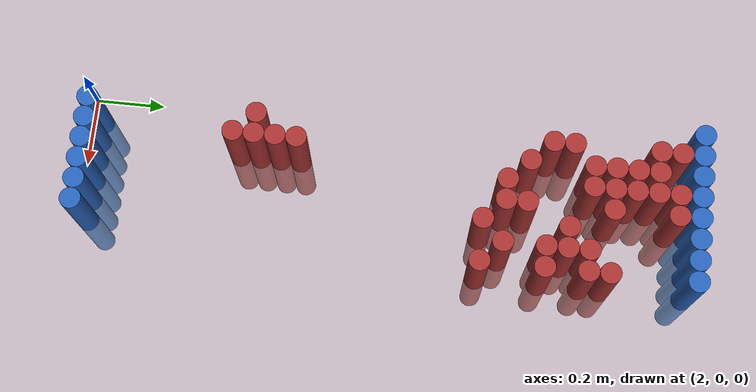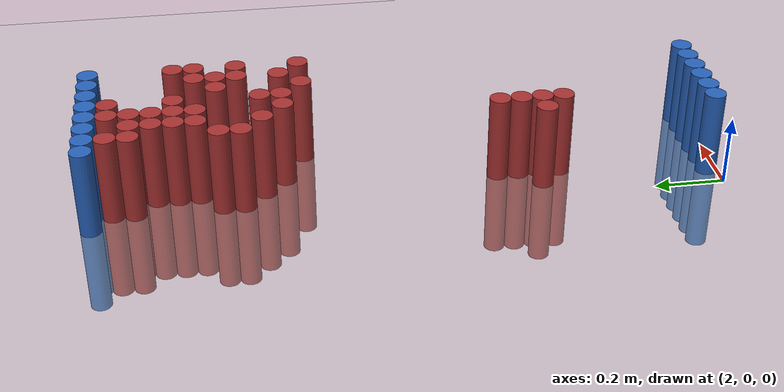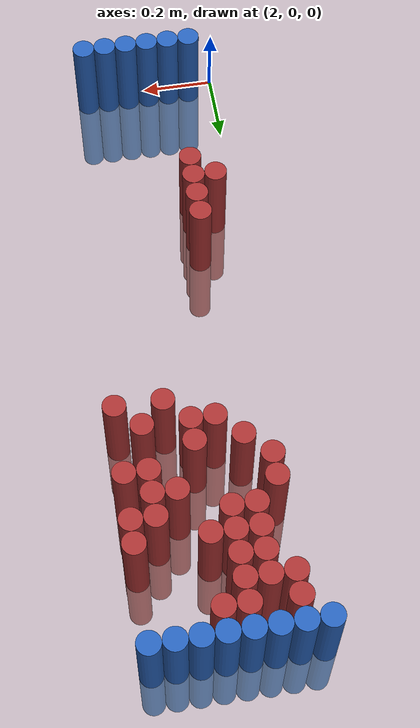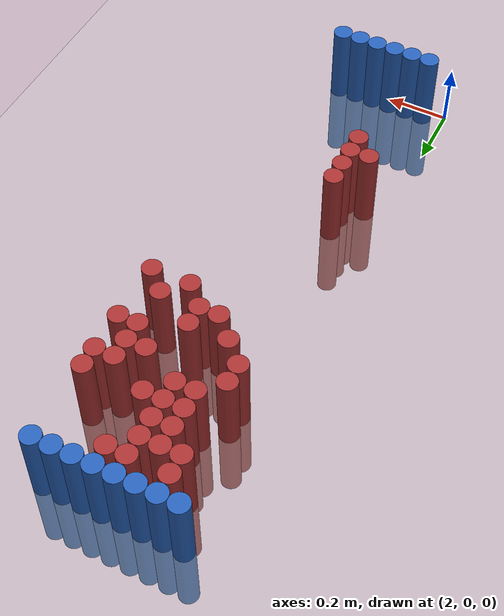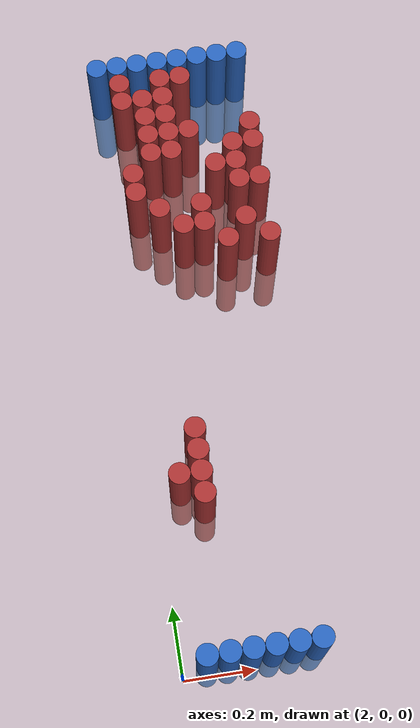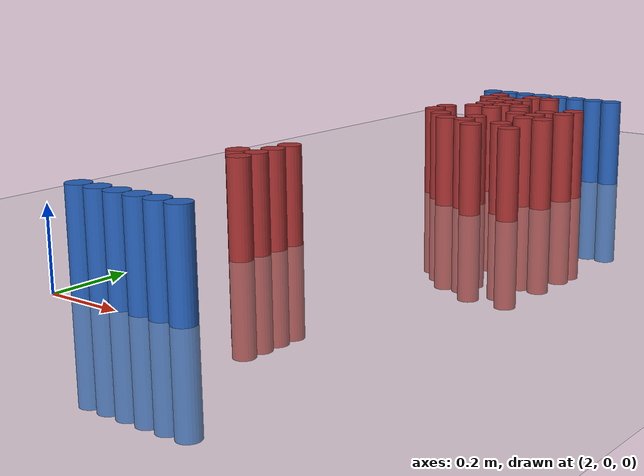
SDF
<sdf version="1.6">
 <world name="default">
  <model name="ground_plane">
   <static>1</static>
   <link name="link">
    <collision name="collision">
     <geometry><plane><normal>0 0 1</normal><size>100 100</size></plane></geometry>
     <surface><friction><ode><mu>100</mu><mu2>50</mu2></ode></friction></surface>
    </collision>
    <visual name="visual">
     <cast_shadows>0</cast_shadows>
     <geometry><plane><normal>0 0 1</normal><size>100 100</size></plane></geometry>
     <material>
      <script><uri>file://media/materials/scripts/gazebo.material</uri><name>Gazebo/Grey</name></script>
     </material>
    </visual>
   </link>
  </model>
  <model name="unit_cylinder_94">
   <static>1</static>
   <pose>2.010000 1.770000 0.000000 0.000000 0.000000 0.000000</pose>
   <link name="link">
    <inertial>
     <mass>1</mass>
     <inertia><ixx>0.145833</ixx><ixy>0</ixy><ixz>0</ixz><iyy>0.145833</iyy><iyz>0</iyz><izz>0.125</izz></inertia>
    </inertial>
    <collision name="collision">
     <geometry><cylinder><radius>0.030000</radius><length>0.5</length></cylinder></geometry>
    </collision>
    <visual name="visual">
     <geometry><cylinder><radius>0.030000</radius><length>0.5</length></cylinder></geometry>
     <material>
      <ambient>0.152000 0.379000 0.720000 1</ambient>
      <diffuse>0.152000 0.379000 0.720000 1</diffuse>
     </material>
     <material>
      <script><name>Gazebo/Grey</name><uri>file://media/materials/scripts/gazebo.material</uri></script>
     </material>
    </visual>
   </link>
  </model>
  <model name="unit_cylinder_95">
   <static>1</static>
   <pose>2.070000 1.770000 0.000000 0.000000 0.000000 0.000000</pose>
   <link name="link">
    <inertial>
     <mass>1</mass>
     <inertia><ixx>0.145833</ixx><ixy>0</ixy><ixz>0</ixz><iyy>0.145833</iyy><iyz>0</iyz><izz>0.125</izz></inertia>
    </inertial>
    <collision name="collision">
     <geometry><cylinder><radius>0.030000</radius><length>0.5</length></cylinder></geometry>
    </collision>
    <visual name="visual">
     <geometry><cylinder><radius>0.030000</radius><length>0.5</length></cylinder></geometry>
     <material>
      <ambient>0.152000 0.379000 0.720000 1</ambient>
      <diffuse>0.152000 0.379000 0.720000 1</diffuse>
     </material>
     <material>
      <script><name>Gazebo/Grey</name><uri>file://media/materials/scripts/gazebo.material</uri></script>
     </material>
    </visual>
   </link>
  </model>
  <model name="unit_cylinder_96">
   <static>1</static>
   <pose>2.130000 1.770000 0.000000 0.000000 0.000000 0.000000</pose>
   <link name="link">
    <inertial>
     <mass>1</mass>
     <inertia><ixx>0.145833</ixx><ixy>0</ixy><ixz>0</ixz><iyy>0.145833</iyy><iyz>0</iyz><izz>0.125</izz></inertia>
    </inertial>
    <collision name="collision">
     <geometry><cylinder><radius>0.030000</radius><length>0.5</length></cylinder></geometry>
    </collision>
    <visual name="visual">
     <geometry><cylinder><radius>0.030000</radius><length>0.5</length></cylinder></geometry>
     <material>
      <ambient>0.152000 0.379000 0.720000 1</ambient>
      <diffuse>0.152000 0.379000 0.720000 1</diffuse>
     </material>
     <material>
      <script><name>Gazebo/Grey</name><uri>file://media/materials/scripts/gazebo.material</uri></script>
     </material>
    </visual>
   </link>
  </model>
  <model name="unit_cylinder_97">
   <static>1</static>
   <pose>2.190000 1.770000 0.000000 0.000000 0.000000 0.000000</pose>
   <link name="link">
    <inertial>
     <mass>1</mass>
     <inertia><ixx>0.145833</ixx><ixy>0</ixy><ixz>0</ixz><iyy>0.145833</iyy><iyz>0</iyz><izz>0.125</izz></inertia>
    </inertial>
    <collision name="collision">
     <geometry><cylinder><radius>0.030000</radius><length>0.5</length></cylinder></geometry>
    </collision>
    <visual name="visual">
     <geometry><cylinder><radius>0.030000</radius><length>0.5</length></cylinder></geometry>
     <material>
      <ambient>0.152000 0.379000 0.720000 1</ambient>
      <diffuse>0.152000 0.379000 0.720000 1</diffuse>
     </material>
     <material>
      <script><name>Gazebo/Grey</name><uri>file://media/materials/scripts/gazebo.material</uri></script>
     </material>
    </visual>
   </link>
  </model>
  <model name="unit_cylinder_98">
   <static>1</static>
   <pose>2.250000 1.770000 0.000000 0.000000 0.000000 0.000000</pose>
   <link name="link">
    <inertial>
     <mass>1</mass>
     <inertia><ixx>0.145833</ixx><ixy>0</ixy><ixz>0</ixz><iyy>0.145833</iyy><iyz>0</iyz><izz>0.125</izz></inertia>
    </inertial>
    <collision name="collision">
     <geometry><cylinder><radius>0.030000</radius><length>0.5</length></cylinder></geometry>
    </collision>
    <visual name="visual">
     <geometry><cylinder><radius>0.030000</radius><length>0.5</length></cylinder></geometry>
     <material>
      <ambient>0.152000 0.379000 0.720000 1</ambient>
      <diffuse>0.152000 0.379000 0.720000 1</diffuse>
     </material>
     <material>
      <script><name>Gazebo/Grey</name><uri>file://media/materials/scripts/gazebo.material</uri></script>
     </material>
    </visual>
   </link>
  </model>
  <model name="unit_cylinder_99">
   <static>1</static>
   <pose>2.310000 1.770000 0.000000 0.000000 0.000000 0.000000</pose>
   <link name="link">
    <inertial>
     <mass>1</mass>
     <inertia><ixx>0.145833</ixx><ixy>0</ixy><ixz>0</ixz><iyy>0.145833</iyy><iyz>0</iyz><izz>0.125</izz></inertia>
    </inertial>
    <collision name="collision">
     <geometry><cylinder><radius>0.030000</radius><length>0.5</length></cylinder></geometry>
    </collision>
    <visual name="visual">
     <geometry><cylinder><radius>0.030000</radius><length>0.5</length></cylinder></geometry>
     <material>
      <ambient>0.152000 0.379000 0.720000 1</ambient>
      <diffuse>0.152000 0.379000 0.720000 1</diffuse>
     </material>
     <material>
      <script><name>Gazebo/Grey</name><uri>file://media/materials/scripts/gazebo.material</uri></script>
     </material>
    </visual>
   </link>
  </model>
  <model name="unit_cylinder_100">
   <static>1</static>
   <pose>2.370000 1.770000 0.000000 0.000000 0.000000 0.000000</pose>
   <link name="link">
    <inertial>
     <mass>1</mass>
     <inertia><ixx>0.145833</ixx><ixy>0</ixy><ixz>0</ixz><iyy>0.145833</iyy><iyz>0</iyz><izz>0.125</izz></inertia>
    </inertial>
    <collision name="collision">
     <geometry><cylinder><radius>0.030000</radius><length>0.5</length></cylinder></geometry>
    </collision>
    <visual name="visual">
     <geometry><cylinder><radius>0.030000</radius><length>0.5</length></cylinder></geometry>
     <material>
      <ambient>0.152000 0.379000 0.720000 1</ambient>
      <diffuse>0.152000 0.379000 0.720000 1</diffuse>
     </material>
     <material>
      <script><name>Gazebo/Grey</name><uri>file://media/materials/scripts/gazebo.material</uri></script>
     </material>
    </visual>
   </link>
  </model>
  <model name="unit_cylinder_101">
   <static>1</static>
   <pose>2.430000 1.770000 0.000000 0.000000 0.000000 0.000000</pose>
   <link name="link">
    <inertial>
     <mass>1</mass>
     <inertia><ixx>0.145833</ixx><ixy>0</ixy><ixz>0</ixz><iyy>0.145833</iyy><iyz>0</iyz><izz>0.125</izz></inertia>
    </inertial>
    <collision name="collision">
     <geometry><cylinder><radius>0.030000</radius><length>0.5</length></cylinder></geometry>
    </collision>
    <visual name="visual">
     <geometry><cylinder><radius>0.030000</radius><length>0.5</length></cylinder></geometry>
     <material>
      <ambient>0.152000 0.379000 0.720000 1</ambient>
      <diffuse>0.152000 0.379000 0.720000 1</diffuse>
     </material>
     <material>
      <script><name>Gazebo/Grey</name><uri>file://media/materials/scripts/gazebo.material</uri></script>
     </material>
    </visual>
   </link>
  </model>
  <model name="unit_cylinder_125">
   <static>1</static>
   <pose>2.070000 1.710000 0.000000 0.000000 0.000000 0.000000</pose>
   <link name="link">
    <inertial>
     <mass>1</mass>
     <inertia><ixx>0.145833</ixx><ixy>0</ixy><ixz>0</ixz><iyy>0.145833</iyy><iyz>0</iyz><izz>0.125</izz></inertia>
    </inertial>
    <collision name="collision">
     <geometry><cylinder><radius>0.030000</radius><length>0.5</length></cylinder></geometry>
    </collision>
    <visual name="visual">
     <geometry><cylinder><radius>0.030000</radius><length>0.5</length></cylinder></geometry>
     <material>
      <ambient>0.648000 0.192000 0.192000 1</ambient>
      <diffuse>0.648000 0.192000 0.192000 1</diffuse>
     </material>
     <material>
      <script><name>Gazebo/Grey</name><uri>file://media/materials/scripts/gazebo.material</uri></script>
     </material>
    </visual>
   </link>
  </model>
  <model name="unit_cylinder_126">
   <static>1</static>
   <pose>2.190000 1.710000 0.000000 0.000000 0.000000 0.000000</pose>
   <link name="link">
    <inertial>
     <mass>1</mass>
     <inertia><ixx>0.145833</ixx><ixy>0</ixy><ixz>0</ixz><iyy>0.145833</iyy><iyz>0</iyz><izz>0.125</izz></inertia>
    </inertial>
    <collision name="collision">
     <geometry><cylinder><radius>0.030000</radius><length>0.5</length></cylinder></geometry>
    </collision>
    <visual name="visual">
     <geometry><cylinder><radius>0.030000</radius><length>0.5</length></cylinder></geometry>
     <material>
      <ambient>0.648000 0.192000 0.192000 1</ambient>
      <diffuse>0.648000 0.192000 0.192000 1</diffuse>
     </material>
     <material>
      <script><name>Gazebo/Grey</name><uri>file://media/materials/scripts/gazebo.material</uri></script>
     </material>
    </visual>
   </link>
  </model>
  <model name="unit_cylinder_127">
   <static>1</static>
   <pose>2.250000 1.710000 0.000000 0.000000 0.000000 0.000000</pose>
   <link name="link">
    <inertial>
     <mass>1</mass>
     <inertia><ixx>0.145833</ixx><ixy>0</ixy><ixz>0</ixz><iyy>0.145833</iyy><iyz>0</iyz><izz>0.125</izz></inertia>
    </inertial>
    <collision name="collision">
     <geometry><cylinder><radius>0.030000</radius><length>0.5</length></cylinder></geometry>
    </collision>
    <visual name="visual">
     <geometry><cylinder><radius>0.030000</radius><length>0.5</length></cylinder></geometry>
     <material>
      <ambient>0.648000 0.192000 0.192000 1</ambient>
      <diffuse>0.648000 0.192000 0.192000 1</diffuse>
     </material>
     <material>
      <script><name>Gazebo/Grey</name><uri>file://media/materials/scripts/gazebo.material</uri></script>
     </material>
    </visual>
   </link>
  </model>
  <model name="unit_cylinder_138">
   <static>1</static>
   <pose>2.070000 1.650000 0.000000 0.000000 0.000000 0.000000</pose>
   <link name="link">
    <inertial>
     <mass>1</mass>
     <inertia><ixx>0.145833</ixx><ixy>0</ixy><ixz>0</ixz><iyy>0.145833</iyy><iyz>0</iyz><izz>0.125</izz></inertia>
    </inertial>
    <collision name="collision">
     <geometry><cylinder><radius>0.030000</radius><length>0.5</length></cylinder></geometry>
    </collision>
    <visual name="visual">
     <geometry><cylinder><radius>0.030000</radius><length>0.5</length></cylinder></geometry>
     <material>
      <ambient>0.648000 0.192000 0.192000 1</ambient>
      <diffuse>0.648000 0.192000 0.192000 1</diffuse>
     </material>
     <material>
      <script><name>Gazebo/Grey</name><uri>file://media/materials/scripts/gazebo.material</uri></script>
     </material>
    </visual>
   </link>
  </model>
  <model name="unit_cylinder_139">
   <static>1</static>
   <pose>2.130000 1.650000 0.000000 0.000000 0.000000 0.000000</pose>
   <link name="link">
    <inertial>
     <mass>1</mass>
     <inertia><ixx>0.145833</ixx><ixy>0</ixy><ixz>0</ixz><iyy>0.145833</iyy><iyz>0</iyz><izz>0.125</izz></inertia>
    </inertial>
    <collision name="collision">
     <geometry><cylinder><radius>0.030000</radius><length>0.5</length></cylinder></geometry>
    </collision>
    <visual name="visual">
     <geometry><cylinder><radius>0.030000</radius><length>0.5</length></cylinder></geometry>
     <material>
      <ambient>0.648000 0.192000 0.192000 1</ambient>
      <diffuse>0.648000 0.192000 0.192000 1</diffuse>
     </material>
     <material>
      <script><name>Gazebo/Grey</name><uri>file://media/materials/scripts/gazebo.material</uri></script>
     </material>
    </visual>
   </link>
  </model>
  <model name="unit_cylinder_140">
   <static>1</static>
   <pose>2.190000 1.650000 0.000000 0.000000 0.000000 0.000000</pose>
   <link name="link">
    <inertial>
     <mass>1</mass>
     <inertia><ixx>0.145833</ixx><ixy>0</ixy><ixz>0</ixz><iyy>0.145833</iyy><iyz>0</iyz><izz>0.125</izz></inertia>
    </inertial>
    <collision name="collision">
     <geometry><cylinder><radius>0.030000</radius><length>0.5</length></cylinder></geometry>
    </collision>
    <visual name="visual">
     <geometry><cylinder><radius>0.030000</radius><length>0.5</length></cylinder></geometry>
     <material>
      <ambient>0.648000 0.192000 0.192000 1</ambient>
      <diffuse>0.648000 0.192000 0.192000 1</diffuse>
     </material>
     <material>
      <script><name>Gazebo/Grey</name><uri>file://media/materials/scripts/gazebo.material</uri></script>
     </material>
    </visual>
   </link>
  </model>
  <model name="unit_cylinder_149">
   <static>1</static>
   <pose>2.130000 1.590000 0.000000 0.000000 0.000000 0.000000</pose>
   <link name="link">
    <inertial>
     <mass>1</mass>
     <inertia><ixx>0.145833</ixx><ixy>0</ixy><ixz>0</ixz><iyy>0.145833</iyy><iyz>0</iyz><izz>0.125</izz></inertia>
    </inertial>
    <collision name="collision">
     <geometry><cylinder><radius>0.030000</radius><length>0.5</length></cylinder></geometry>
    </collision>
    <visual name="visual">
     <geometry><cylinder><radius>0.030000</radius><length>0.5</length></cylinder></geometry>
     <material>
      <ambient>0.648000 0.192000 0.192000 1</ambient>
      <diffuse>0.648000 0.192000 0.192000 1</diffuse>
     </material>
     <material>
      <script><name>Gazebo/Grey</name><uri>file://media/materials/scripts/gazebo.material</uri></script>
     </material>
    </visual>
   </link>
  </model>
  <model name="unit_cylinder_150">
   <static>1</static>
   <pose>2.190000 1.590000 0.000000 0.000000 0.000000 0.000000</pose>
   <link name="link">
    <inertial>
     <mass>1</mass>
     <inertia><ixx>0.145833</ixx><ixy>0</ixy><ixz>0</ixz><iyy>0.145833</iyy><iyz>0</iyz><izz>0.125</izz></inertia>
    </inertial>
    <collision name="collision">
     <geometry><cylinder><radius>0.030000</radius><length>0.5</length></cylinder></geometry>
    </collision>
    <visual name="visual">
     <geometry><cylinder><radius>0.030000</radius><length>0.5</length></cylinder></geometry>
     <material>
      <ambient>0.648000 0.192000 0.192000 1</ambient>
      <diffuse>0.648000 0.192000 0.192000 1</diffuse>
     </material>
     <material>
      <script><name>Gazebo/Grey</name><uri>file://media/materials/scripts/gazebo.material</uri></script>
     </material>
    </visual>
   </link>
  </model>
  <model name="unit_cylinder_156">
   <static>1</static>
   <pose>2.130000 1.530000 0.000000 0.000000 0.000000 0.000000</pose>
   <link name="link">
    <inertial>
     <mass>1</mass>
     <inertia><ixx>0.145833</ixx><ixy>0</ixy><ixz>0</ixz><iyy>0.145833</iyy><iyz>0</iyz><izz>0.125</izz></inertia>
    </inertial>
    <collision name="collision">
     <geometry><cylinder><radius>0.030000</radius><length>0.5</length></cylinder></geometry>
    </collision>
    <visual name="visual">
     <geometry><cylinder><radius>0.030000</radius><length>0.5</length></cylinder></geometry>
     <material>
      <ambient>0.648000 0.192000 0.192000 1</ambient>
      <diffuse>0.648000 0.192000 0.192000 1</diffuse>
     </material>
     <material>
      <script><name>Gazebo/Grey</name><uri>file://media/materials/scripts/gazebo.material</uri></script>
     </material>
    </visual>
   </link>
  </model>
  <model name="unit_cylinder_157">
   <static>1</static>
   <pose>2.190000 1.530000 0.000000 0.000000 0.000000 0.000000</pose>
   <link name="link">
    <inertial>
     <mass>1</mass>
     <inertia><ixx>0.145833</ixx><ixy>0</ixy><ixz>0</ixz><iyy>0.145833</iyy><iyz>0</iyz><izz>0.125</izz></inertia>
    </inertial>
    <collision name="collision">
     <geometry><cylinder><radius>0.030000</radius><length>0.5</length></cylinder></geometry>
    </collision>
    <visual name="visual">
     <geometry><cylinder><radius>0.030000</radius><length>0.5</length></cylinder></geometry>
     <material>
      <ambient>0.648000 0.192000 0.192000 1</ambient>
      <diffuse>0.648000 0.192000 0.192000 1</diffuse>
     </material>
     <material>
      <script><name>Gazebo/Grey</name><uri>file://media/materials/scripts/gazebo.material</uri></script>
     </material>
    </visual>
   </link>
  </model>
  <model name="unit_cylinder_158">
   <static>1</static>
   <pose>2.250000 1.530000 0.000000 0.000000 0.000000 0.000000</pose>
   <link name="link">
    <inertial>
     <mass>1</mass>
     <inertia><ixx>0.145833</ixx><ixy>0</ixy><ixz>0</ixz><iyy>0.145833</iyy><iyz>0</iyz><izz>0.125</izz></inertia>
    </inertial>
    <collision name="collision">
     <geometry><cylinder><radius>0.030000</radius><length>0.5</length></cylinder></geometry>
    </collision>
    <visual name="visual">
     <geometry><cylinder><radius>0.030000</radius><length>0.5</length></cylinder></geometry>
     <material>
      <ambient>0.648000 0.192000 0.192000 1</ambient>
      <diffuse>0.648000 0.192000 0.192000 1</diffuse>
     </material>
     <material>
      <script><name>Gazebo/Grey</name><uri>file://media/materials/scripts/gazebo.material</uri></script>
     </material>
    </visual>
   </link>
  </model>
  <model name="unit_cylinder_159">
   <static>1</static>
   <pose>2.430000 1.530000 0.000000 0.000000 0.000000 0.000000</pose>
   <link name="link">
    <inertial>
     <mass>1</mass>
     <inertia><ixx>0.145833</ixx><ixy>0</ixy><ixz>0</ixz><iyy>0.145833</iyy><iyz>0</iyz><izz>0.125</izz></inertia>
    </inertial>
    <collision name="collision">
     <geometry><cylinder><radius>0.030000</radius><length>0.5</length></cylinder></geometry>
    </collision>
    <visual name="visual">
     <geometry><cylinder><radius>0.030000</radius><length>0.5</length></cylinder></geometry>
     <material>
      <ambient>0.648000 0.192000 0.192000 1</ambient>
      <diffuse>0.648000 0.192000 0.192000 1</diffuse>
     </material>
     <material>
      <script><name>Gazebo/Grey</name><uri>file://media/materials/scripts/gazebo.material</uri></script>
     </material>
    </visual>
   </link>
  </model>
  <model name="unit_cylinder_171">
   <static>1</static>
   <pose>2.130000 1.470000 0.000000 0.000000 0.000000 0.000000</pose>
   <link name="link">
    <inertial>
     <mass>1</mass>
     <inertia><ixx>0.145833</ixx><ixy>0</ixy><ixz>0</ixz><iyy>0.145833</iyy><iyz>0</iyz><izz>0.125</izz></inertia>
    </inertial>
    <collision name="collision">
     <geometry><cylinder><radius>0.030000</radius><length>0.5</length></cylinder></geometry>
    </collision>
    <visual name="visual">
     <geometry><cylinder><radius>0.030000</radius><length>0.5</length></cylinder></geometry>
     <material>
      <ambient>0.648000 0.192000 0.192000 1</ambient>
      <diffuse>0.648000 0.192000 0.192000 1</diffuse>
     </material>
     <material>
      <script><name>Gazebo/Grey</name><uri>file://media/materials/scripts/gazebo.material</uri></script>
     </material>
    </visual>
   </link>
  </model>
  <model name="unit_cylinder_172">
   <static>1</static>
   <pose>2.190000 1.470000 0.000000 0.000000 0.000000 0.000000</pose>
   <link name="link">
    <inertial>
     <mass>1</mass>
     <inertia><ixx>0.145833</ixx><ixy>0</ixy><ixz>0</ixz><iyy>0.145833</iyy><iyz>0</iyz><izz>0.125</izz></inertia>
    </inertial>
    <collision name="collision">
     <geometry><cylinder><radius>0.030000</radius><length>0.5</length></cylinder></geometry>
    </collision>
    <visual name="visual">
     <geometry><cylinder><radius>0.030000</radius><length>0.5</length></cylinder></geometry>
     <material>
      <ambient>0.648000 0.192000 0.192000 1</ambient>
      <diffuse>0.648000 0.192000 0.192000 1</diffuse>
     </material>
     <material>
      <script><name>Gazebo/Grey</name><uri>file://media/materials/scripts/gazebo.material</uri></script>
     </material>
    </visual>
   </link>
  </model>
  <model name="unit_cylinder_173">
   <static>1</static>
   <pose>2.370000 1.470000 0.000000 0.000000 0.000000 0.000000</pose>
   <link name="link">
    <inertial>
     <mass>1</mass>
     <inertia><ixx>0.145833</ixx><ixy>0</ixy><ixz>0</ixz><iyy>0.145833</iyy><iyz>0</iyz><izz>0.125</izz></inertia>
    </inertial>
    <collision name="collision">
     <geometry><cylinder><radius>0.030000</radius><length>0.5</length></cylinder></geometry>
    </collision>
    <visual name="visual">
     <geometry><cylinder><radius>0.030000</radius><length>0.5</length></cylinder></geometry>
     <material>
      <ambient>0.648000 0.192000 0.192000 1</ambient>
      <diffuse>0.648000 0.192000 0.192000 1</diffuse>
     </material>
     <material>
      <script><name>Gazebo/Grey</name><uri>file://media/materials/scripts/gazebo.material</uri></script>
     </material>
    </visual>
   </link>
  </model>
  <model name="unit_cylinder_174">
   <static>1</static>
   <pose>2.430000 1.470000 0.000000 0.000000 0.000000 0.000000</pose>
   <link name="link">
    <inertial>
     <mass>1</mass>
     <inertia><ixx>0.145833</ixx><ixy>0</ixy><ixz>0</ixz><iyy>0.145833</iyy><iyz>0</iyz><izz>0.125</izz></inertia>
    </inertial>
    <collision name="collision">
     <geometry><cylinder><radius>0.030000</radius><length>0.5</length></cylinder></geometry>
    </collision>
    <visual name="visual">
     <geometry><cylinder><radius>0.030000</radius><length>0.5</length></cylinder></geometry>
     <material>
      <ambient>0.648000 0.192000 0.192000 1</ambient>
      <diffuse>0.648000 0.192000 0.192000 1</diffuse>
     </material>
     <material>
      <script><name>Gazebo/Grey</name><uri>file://media/materials/scripts/gazebo.material</uri></script>
     </material>
    </visual>
   </link>
  </model>
  <model name="unit_cylinder_186">
   <static>1</static>
   <pose>2.070000 1.410000 0.000000 0.000000 0.000000 0.000000</pose>
   <link name="link">
    <inertial>
     <mass>1</mass>
     <inertia><ixx>0.145833</ixx><ixy>0</ixy><ixz>0</ixz><iyy>0.145833</iyy><iyz>0</iyz><izz>0.125</izz></inertia>
    </inertial>
    <collision name="collision">
     <geometry><cylinder><radius>0.030000</radius><length>0.5</length></cylinder></geometry>
    </collision>
    <visual name="visual">
     <geometry><cylinder><radius>0.030000</radius><length>0.5</length></cylinder></geometry>
     <material>
      <ambient>0.648000 0.192000 0.192000 1</ambient>
      <diffuse>0.648000 0.192000 0.192000 1</diffuse>
     </material>
     <material>
      <script><name>Gazebo/Grey</name><uri>file://media/materials/scripts/gazebo.material</uri></script>
     </material>
    </visual>
   </link>
  </model>
  <model name="unit_cylinder_187">
   <static>1</static>
   <pose>2.310000 1.410000 0.000000 0.000000 0.000000 0.000000</pose>
   <link name="link">
    <inertial>
     <mass>1</mass>
     <inertia><ixx>0.145833</ixx><ixy>0</ixy><ixz>0</ixz><iyy>0.145833</iyy><iyz>0</iyz><izz>0.125</izz></inertia>
    </inertial>
    <collision name="collision">
     <geometry><cylinder><radius>0.030000</radius><length>0.5</length></cylinder></geometry>
    </collision>
    <visual name="visual">
     <geometry><cylinder><radius>0.030000</radius><length>0.5</length></cylinder></geometry>
     <material>
      <ambient>0.648000 0.192000 0.192000 1</ambient>
      <diffuse>0.648000 0.192000 0.192000 1</diffuse>
     </material>
     <material>
      <script><name>Gazebo/Grey</name><uri>file://media/materials/scripts/gazebo.material</uri></script>
     </material>
    </visual>
   </link>
  </model>
  <model name="unit_cylinder_188">
   <static>1</static>
   <pose>2.370000 1.410000 0.000000 0.000000 0.000000 0.000000</pose>
   <link name="link">
    <inertial>
     <mass>1</mass>
     <inertia><ixx>0.145833</ixx><ixy>0</ixy><ixz>0</ixz><iyy>0.145833</iyy><iyz>0</iyz><izz>0.125</izz></inertia>
    </inertial>
    <collision name="collision">
     <geometry><cylinder><radius>0.030000</radius><length>0.5</length></cylinder></geometry>
    </collision>
    <visual name="visual">
     <geometry><cylinder><radius>0.030000</radius><length>0.5</length></cylinder></geometry>
     <material>
      <ambient>0.648000 0.192000 0.192000 1</ambient>
      <diffuse>0.648000 0.192000 0.192000 1</diffuse>
     </material>
     <material>
      <script><name>Gazebo/Grey</name><uri>file://media/materials/scripts/gazebo.material</uri></script>
     </material>
    </visual>
   </link>
  </model>
  <model name="unit_cylinder_194">
   <static>1</static>
   <pose>2.070000 1.350000 0.000000 0.000000 0.000000 0.000000</pose>
   <link name="link">
    <inertial>
     <mass>1</mass>
     <inertia><ixx>0.145833</ixx><ixy>0</ixy><ixz>0</ixz><iyy>0.145833</iyy><iyz>0</iyz><izz>0.125</izz></inertia>
    </inertial>
    <collision name="collision">
     <geometry><cylinder><radius>0.030000</radius><length>0.5</length></cylinder></geometry>
    </collision>
    <visual name="visual">
     <geometry><cylinder><radius>0.030000</radius><length>0.5</length></cylinder></geometry>
     <material>
      <ambient>0.648000 0.192000 0.192000 1</ambient>
      <diffuse>0.648000 0.192000 0.192000 1</diffuse>
     </material>
     <material>
      <script><name>Gazebo/Grey</name><uri>file://media/materials/scripts/gazebo.material</uri></script>
     </material>
    </visual>
   </link>
  </model>
  <model name="unit_cylinder_195">
   <static>1</static>
   <pose>2.370000 1.350000 0.000000 0.000000 0.000000 0.000000</pose>
   <link name="link">
    <inertial>
     <mass>1</mass>
     <inertia><ixx>0.145833</ixx><ixy>0</ixy><ixz>0</ixz><iyy>0.145833</iyy><iyz>0</iyz><izz>0.125</izz></inertia>
    </inertial>
    <collision name="collision">
     <geometry><cylinder><radius>0.030000</radius><length>0.5</length></cylinder></geometry>
    </collision>
    <visual name="visual">
     <geometry><cylinder><radius>0.030000</radius><length>0.5</length></cylinder></geometry>
     <material>
      <ambient>0.648000 0.192000 0.192000 1</ambient>
      <diffuse>0.648000 0.192000 0.192000 1</diffuse>
     </material>
     <material>
      <script><name>Gazebo/Grey</name><uri>file://media/materials/scripts/gazebo.material</uri></script>
     </material>
    </visual>
   </link>
  </model>
  <model name="unit_cylinder_196">
   <static>1</static>
   <pose>2.430000 1.350000 0.000000 0.000000 0.000000 0.000000</pose>
   <link name="link">
    <inertial>
     <mass>1</mass>
     <inertia><ixx>0.145833</ixx><ixy>0</ixy><ixz>0</ixz><iyy>0.145833</iyy><iyz>0</iyz><izz>0.125</izz></inertia>
    </inertial>
    <collision name="collision">
     <geometry><cylinder><radius>0.030000</radius><length>0.5</length></cylinder></geometry>
    </collision>
    <visual name="visual">
     <geometry><cylinder><radius>0.030000</radius><length>0.5</length></cylinder></geometry>
     <material>
      <ambient>0.648000 0.192000 0.192000 1</ambient>
      <diffuse>0.648000 0.192000 0.192000 1</diffuse>
     </material>
     <material>
      <script><name>Gazebo/Grey</name><uri>file://media/materials/scripts/gazebo.material</uri></script>
     </material>
    </visual>
   </link>
  </model>
  <model name="unit_cylinder_200">
   <static>1</static>
   <pose>2.130000 1.290000 0.000000 0.000000 0.000000 0.000000</pose>
   <link name="link">
    <inertial>
     <mass>1</mass>
     <inertia><ixx>0.145833</ixx><ixy>0</ixy><ixz>0</ixz><iyy>0.145833</iyy><iyz>0</iyz><izz>0.125</izz></inertia>
    </inertial>
    <collision name="collision">
     <geometry><cylinder><radius>0.030000</radius><length>0.5</length></cylinder></geometry>
    </collision>
    <visual name="visual">
     <geometry><cylinder><radius>0.030000</radius><length>0.5</length></cylinder></geometry>
     <material>
      <ambient>0.648000 0.192000 0.192000 1</ambient>
      <diffuse>0.648000 0.192000 0.192000 1</diffuse>
     </material>
     <material>
      <script><name>Gazebo/Grey</name><uri>file://media/materials/scripts/gazebo.material</uri></script>
     </material>
    </visual>
   </link>
  </model>
  <model name="unit_cylinder_201">
   <static>1</static>
   <pose>2.250000 1.290000 0.000000 0.000000 0.000000 0.000000</pose>
   <link name="link">
    <inertial>
     <mass>1</mass>
     <inertia><ixx>0.145833</ixx><ixy>0</ixy><ixz>0</ixz><iyy>0.145833</iyy><iyz>0</iyz><izz>0.125</izz></inertia>
    </inertial>
    <collision name="collision">
     <geometry><cylinder><radius>0.030000</radius><length>0.5</length></cylinder></geometry>
    </collision>
    <visual name="visual">
     <geometry><cylinder><radius>0.030000</radius><length>0.5</length></cylinder></geometry>
     <material>
      <ambient>0.648000 0.192000 0.192000 1</ambient>
      <diffuse>0.648000 0.192000 0.192000 1</diffuse>
     </material>
     <material>
      <script><name>Gazebo/Grey</name><uri>file://media/materials/scripts/gazebo.material</uri></script>
     </material>
    </visual>
   </link>
  </model>
  <model name="unit_cylinder_205">
   <static>1</static>
   <pose>2.190000 1.230000 0.000000 0.000000 0.000000 0.000000</pose>
   <link name="link">
    <inertial>
     <mass>1</mass>
     <inertia><ixx>0.145833</ixx><ixy>0</ixy><ixz>0</ixz><iyy>0.145833</iyy><iyz>0</iyz><izz>0.125</izz></inertia>
    </inertial>
    <collision name="collision">
     <geometry><cylinder><radius>0.030000</radius><length>0.5</length></cylinder></geometry>
    </collision>
    <visual name="visual">
     <geometry><cylinder><radius>0.030000</radius><length>0.5</length></cylinder></geometry>
     <material>
      <ambient>0.648000 0.192000 0.192000 1</ambient>
      <diffuse>0.648000 0.192000 0.192000 1</diffuse>
     </material>
     <material>
      <script><name>Gazebo/Grey</name><uri>file://media/materials/scripts/gazebo.material</uri></script>
     </material>
    </visual>
   </link>
  </model>
  <model name="unit_cylinder_206">
   <static>1</static>
   <pose>2.250000 1.230000 0.000000 0.000000 0.000000 0.000000</pose>
   <link name="link">
    <inertial>
     <mass>1</mass>
     <inertia><ixx>0.145833</ixx><ixy>0</ixy><ixz>0</ixz><iyy>0.145833</iyy><iyz>0</iyz><izz>0.125</izz></inertia>
    </inertial>
    <collision name="collision">
     <geometry><cylinder><radius>0.030000</radius><length>0.5</length></cylinder></geometry>
    </collision>
    <visual name="visual">
     <geometry><cylinder><radius>0.030000</radius><length>0.5</length></cylinder></geometry>
     <material>
      <ambient>0.648000 0.192000 0.192000 1</ambient>
      <diffuse>0.648000 0.192000 0.192000 1</diffuse>
     </material>
     <material>
      <script><name>Gazebo/Grey</name><uri>file://media/materials/scripts/gazebo.material</uri></script>
     </material>
    </visual>
   </link>
  </model>
  <model name="unit_cylinder_207">
   <static>1</static>
   <pose>2.370000 1.230000 0.000000 0.000000 0.000000 0.000000</pose>
   <link name="link">
    <inertial>
     <mass>1</mass>
     <inertia><ixx>0.145833</ixx><ixy>0</ixy><ixz>0</ixz><iyy>0.145833</iyy><iyz>0</iyz><izz>0.125</izz></inertia>
    </inertial>
    <collision name="collision">
     <geometry><cylinder><radius>0.030000</radius><length>0.5</length></cylinder></geometry>
    </collision>
    <visual name="visual">
     <geometry><cylinder><radius>0.030000</radius><length>0.5</length></cylinder></geometry>
     <material>
      <ambient>0.648000 0.192000 0.192000 1</ambient>
      <diffuse>0.648000 0.192000 0.192000 1</diffuse>
     </material>
     <material>
      <script><name>Gazebo/Grey</name><uri>file://media/materials/scripts/gazebo.material</uri></script>
     </material>
    </visual>
   </link>
  </model>
  <model name="unit_cylinder_212">
   <static>1</static>
   <pose>2.310000 1.170000 0.000000 0.000000 0.000000 0.000000</pose>
   <link name="link">
    <inertial>
     <mass>1</mass>
     <inertia><ixx>0.145833</ixx><ixy>0</ixy><ixz>0</ixz><iyy>0.145833</iyy><iyz>0</iyz><izz>0.125</izz></inertia>
    </inertial>
    <collision name="collision">
     <geometry><cylinder><radius>0.030000</radius><length>0.5</length></cylinder></geometry>
    </collision>
    <visual name="visual">
     <geometry><cylinder><radius>0.030000</radius><length>0.5</length></cylinder></geometry>
     <material>
      <ambient>0.648000 0.192000 0.192000 1</ambient>
      <diffuse>0.648000 0.192000 0.192000 1</diffuse>
     </material>
     <material>
      <script><name>Gazebo/Grey</name><uri>file://media/materials/scripts/gazebo.material</uri></script>
     </material>
    </visual>
   </link>
  </model>
  <model name="unit_cylinder_213">
   <static>1</static>
   <pose>2.430000 1.170000 0.000000 0.000000 0.000000 0.000000</pose>
   <link name="link">
    <inertial>
     <mass>1</mass>
     <inertia><ixx>0.145833</ixx><ixy>0</ixy><ixz>0</ixz><iyy>0.145833</iyy><iyz>0</iyz><izz>0.125</izz></inertia>
    </inertial>
    <collision name="collision">
     <geometry><cylinder><radius>0.030000</radius><length>0.5</length></cylinder></geometry>
    </collision>
    <visual name="visual">
     <geometry><cylinder><radius>0.030000</radius><length>0.5</length></cylinder></geometry>
     <material>
      <ambient>0.648000 0.192000 0.192000 1</ambient>
      <diffuse>0.648000 0.192000 0.192000 1</diffuse>
     </material>
     <material>
      <script><name>Gazebo/Grey</name><uri>file://media/materials/scripts/gazebo.material</uri></script>
     </material>
    </visual>
   </link>
  </model>
  <model name="unit_cylinder_228">
   <static>1</static>
   <pose>2.130000 0.630000 0.000000 0.000000 0.000000 0.000000</pose>
   <link name="link">
    <inertial>
     <mass>1</mass>
     <inertia><ixx>0.145833</ixx><ixy>0</ixy><ixz>0</ixz><iyy>0.145833</iyy><iyz>0</iyz><izz>0.125</izz></inertia>
    </inertial>
    <collision name="collision">
     <geometry><cylinder><radius>0.030000</radius><length>0.5</length></cylinder></geometry>
    </collision>
    <visual name="visual">
     <geometry><cylinder><radius>0.030000</radius><length>0.5</length></cylinder></geometry>
     <material>
      <ambient>0.648000 0.192000 0.192000 1</ambient>
      <diffuse>0.648000 0.192000 0.192000 1</diffuse>
     </material>
     <material>
      <script><name>Gazebo/Grey</name><uri>file://media/materials/scripts/gazebo.material</uri></script>
     </material>
    </visual>
   </link>
  </model>
  <model name="unit_cylinder_229">
   <static>1</static>
   <pose>2.130000 0.570000 0.000000 0.000000 0.000000 0.000000</pose>
   <link name="link">
    <inertial>
     <mass>1</mass>
     <inertia><ixx>0.145833</ixx><ixy>0</ixy><ixz>0</ixz><iyy>0.145833</iyy><iyz>0</iyz><izz>0.125</izz></inertia>
    </inertial>
    <collision name="collision">
     <geometry><cylinder><radius>0.030000</radius><length>0.5</length></cylinder></geometry>
    </collision>
    <visual name="visual">
     <geometry><cylinder><radius>0.030000</radius><length>0.5</length></cylinder></geometry>
     <material>
      <ambient>0.648000 0.192000 0.192000 1</ambient>
      <diffuse>0.648000 0.192000 0.192000 1</diffuse>
     </material>
     <material>
      <script><name>Gazebo/Grey</name><uri>file://media/materials/scripts/gazebo.material</uri></script>
     </material>
    </visual>
   </link>
  </model>
  <model name="unit_cylinder_234">
   <static>1</static>
   <pose>2.070000 0.510000 0.000000 0.000000 0.000000 0.000000</pose>
   <link name="link">
    <inertial>
     <mass>1</mass>
     <inertia><ixx>0.145833</ixx><ixy>0</ixy><ixz>0</ixz><iyy>0.145833</iyy><iyz>0</iyz><izz>0.125</izz></inertia>
    </inertial>
    <collision name="collision">
     <geometry><cylinder><radius>0.030000</radius><length>0.5</length></cylinder></geometry>
    </collision>
    <visual name="visual">
     <geometry><cylinder><radius>0.030000</radius><length>0.5</length></cylinder></geometry>
     <material>
      <ambient>0.648000 0.192000 0.192000 1</ambient>
      <diffuse>0.648000 0.192000 0.192000 1</diffuse>
     </material>
     <material>
      <script><name>Gazebo/Grey</name><uri>file://media/materials/scripts/gazebo.material</uri></script>
     </material>
    </visual>
   </link>
  </model>
  <model name="unit_cylinder_235">
   <static>1</static>
   <pose>2.130000 0.510000 0.000000 0.000000 0.000000 0.000000</pose>
   <link name="link">
    <inertial>
     <mass>1</mass>
     <inertia><ixx>0.145833</ixx><ixy>0</ixy><ixz>0</ixz><iyy>0.145833</iyy><iyz>0</iyz><izz>0.125</izz></inertia>
    </inertial>
    <collision name="collision">
     <geometry><cylinder><radius>0.030000</radius><length>0.5</length></cylinder></geometry>
    </collision>
    <visual name="visual">
     <geometry><cylinder><radius>0.030000</radius><length>0.5</length></cylinder></geometry>
     <material>
      <ambient>0.648000 0.192000 0.192000 1</ambient>
      <diffuse>0.648000 0.192000 0.192000 1</diffuse>
     </material>
     <material>
      <script><name>Gazebo/Grey</name><uri>file://media/materials/scripts/gazebo.material</uri></script>
     </material>
    </visual>
   </link>
  </model>
  <model name="unit_cylinder_244">
   <static>1</static>
   <pose>2.130000 0.450000 0.000000 0.000000 0.000000 0.000000</pose>
   <link name="link">
    <inertial>
     <mass>1</mass>
     <inertia><ixx>0.145833</ixx><ixy>0</ixy><ixz>0</ixz><iyy>0.145833</iyy><iyz>0</iyz><izz>0.125</izz></inertia>
    </inertial>
    <collision name="collision">
     <geometry><cylinder><radius>0.030000</radius><length>0.5</length></cylinder></geometry>
    </collision>
    <visual name="visual">
     <geometry><cylinder><radius>0.030000</radius><length>0.5</length></cylinder></geometry>
     <material>
      <ambient>0.648000 0.192000 0.192000 1</ambient>
      <diffuse>0.648000 0.192000 0.192000 1</diffuse>
     </material>
     <material>
      <script><name>Gazebo/Grey</name><uri>file://media/materials/scripts/gazebo.material</uri></script>
     </material>
    </visual>
   </link>
  </model>
  <model name="unit_cylinder_302">
   <static>1</static>
   <pose>2.070000 0.030000 0.000000 0.000000 0.000000 0.000000</pose>
   <link name="link">
    <inertial>
     <mass>1</mass>
     <inertia><ixx>0.145833</ixx><ixy>0</ixy><ixz>0</ixz><iyy>0.145833</iyy><iyz>0</iyz><izz>0.125</izz></inertia>
    </inertial>
    <collision name="collision">
     <geometry><cylinder><radius>0.030000</radius><length>0.5</length></cylinder></geometry>
    </collision>
    <visual name="visual">
     <geometry><cylinder><radius>0.030000</radius><length>0.5</length></cylinder></geometry>
     <material>
      <ambient>0.152000 0.379000 0.720000 1</ambient>
      <diffuse>0.152000 0.379000 0.720000 1</diffuse>
     </material>
     <material>
      <script><name>Gazebo/Grey</name><uri>file://media/materials/scripts/gazebo.material</uri></script>
     </material>
    </visual>
   </link>
  </model>
  <model name="unit_cylinder_303">
   <static>1</static>
   <pose>2.130000 0.030000 0.000000 0.000000 0.000000 0.000000</pose>
   <link name="link">
    <inertial>
     <mass>1</mass>
     <inertia><ixx>0.145833</ixx><ixy>0</ixy><ixz>0</ixz><iyy>0.145833</iyy><iyz>0</iyz><izz>0.125</izz></inertia>
    </inertial>
    <collision name="collision">
     <geometry><cylinder><radius>0.030000</radius><length>0.5</length></cylinder></geometry>
    </collision>
    <visual name="visual">
     <geometry><cylinder><radius>0.030000</radius><length>0.5</length></cylinder></geometry>
     <material>
      <ambient>0.152000 0.379000 0.720000 1</ambient>
      <diffuse>0.152000 0.379000 0.720000 1</diffuse>
     </material>
     <material>
      <script><name>Gazebo/Grey</name><uri>file://media/materials/scripts/gazebo.material</uri></script>
     </material>
    </visual>
   </link>
  </model>
  <model name="unit_cylinder_304">
   <static>1</static>
   <pose>2.190000 0.030000 0.000000 0.000000 0.000000 0.000000</pose>
   <link name="link">
    <inertial>
     <mass>1</mass>
     <inertia><ixx>0.145833</ixx><ixy>0</ixy><ixz>0</ixz><iyy>0.145833</iyy><iyz>0</iyz><izz>0.125</izz></inertia>
    </inertial>
    <collision name="collision">
     <geometry><cylinder><radius>0.030000</radius><length>0.5</length></cylinder></geometry>
    </collision>
    <visual name="visual">
     <geometry><cylinder><radius>0.030000</radius><length>0.5</length></cylinder></geometry>
     <material>
      <ambient>0.152000 0.379000 0.720000 1</ambient>
      <diffuse>0.152000 0.379000 0.720000 1</diffuse>
     </material>
     <material>
      <script><name>Gazebo/Grey</name><uri>file://media/materials/scripts/gazebo.material</uri></script>
     </material>
    </visual>
   </link>
  </model>
  <model name="unit_cylinder_305">
   <static>1</static>
   <pose>2.250000 0.030000 0.000000 0.000000 0.000000 0.000000</pose>
   <link name="link">
    <inertial>
     <mass>1</mass>
     <inertia><ixx>0.145833</ixx><ixy>0</ixy><ixz>0</ixz><iyy>0.145833</iyy><iyz>0</iyz><izz>0.125</izz></inertia>
    </inertial>
    <collision name="collision">
     <geometry><cylinder><radius>0.030000</radius><length>0.5</length></cylinder></geometry>
    </collision>
    <visual name="visual">
     <geometry><cylinder><radius>0.030000</radius><length>0.5</length></cylinder></geometry>
     <material>
      <ambient>0.152000 0.379000 0.720000 1</ambient>
      <diffuse>0.152000 0.379000 0.720000 1</diffuse>
     </material>
     <material>
      <script><name>Gazebo/Grey</name><uri>file://media/materials/scripts/gazebo.material</uri></script>
     </material>
    </visual>
   </link>
  </model>
  <model name="unit_cylinder_306">
   <static>1</static>
   <pose>2.310000 0.030000 0.000000 0.000000 0.000000 0.000000</pose>
   <link name="link">
    <inertial>
     <mass>1</mass>
     <inertia><ixx>0.145833</ixx><ixy>0</ixy><ixz>0</ixz><iyy>0.145833</iyy><iyz>0</iyz><izz>0.125</izz></inertia>
    </inertial>
    <collision name="collision">
     <geometry><cylinder><radius>0.030000</radius><length>0.5</length></cylinder></geometry>
    </collision>
    <visual name="visual">
     <geometry><cylinder><radius>0.030000</radius><length>0.5</length></cylinder></geometry>
     <material>
      <ambient>0.152000 0.379000 0.720000 1</ambient>
      <diffuse>0.152000 0.379000 0.720000 1</diffuse>
     </material>
     <material>
      <script><name>Gazebo/Grey</name><uri>file://media/materials/scripts/gazebo.material</uri></script>
     </material>
    </visual>
   </link>
  </model>
  <model name="unit_cylinder_307">
   <static>1</static>
   <pose>2.370000 0.030000 0.000000 0.000000 0.000000 0.000000</pose>
   <link name="link">
    <inertial>
     <mass>1</mass>
     <inertia><ixx>0.145833</ixx><ixy>0</ixy><ixz>0</ixz><iyy>0.145833</iyy><iyz>0</iyz><izz>0.125</izz></inertia>
    </inertial>
    <collision name="collision">
     <geometry><cylinder><radius>0.030000</radius><length>0.5</length></cylinder></geometry>
    </collision>
    <visual name="visual">
     <geometry><cylinder><radius>0.030000</radius><length>0.5</length></cylinder></geometry>
     <material>
      <ambient>0.152000 0.379000 0.720000 1</ambient>
      <diffuse>0.152000 0.379000 0.720000 1</diffuse>
     </material>
     <material>
      <script><name>Gazebo/Grey</name><uri>file://media/materials/scripts/gazebo.material</uri></script>
     </material>
    </visual>
   </link>
  </model>
 </world>
</sdf>
